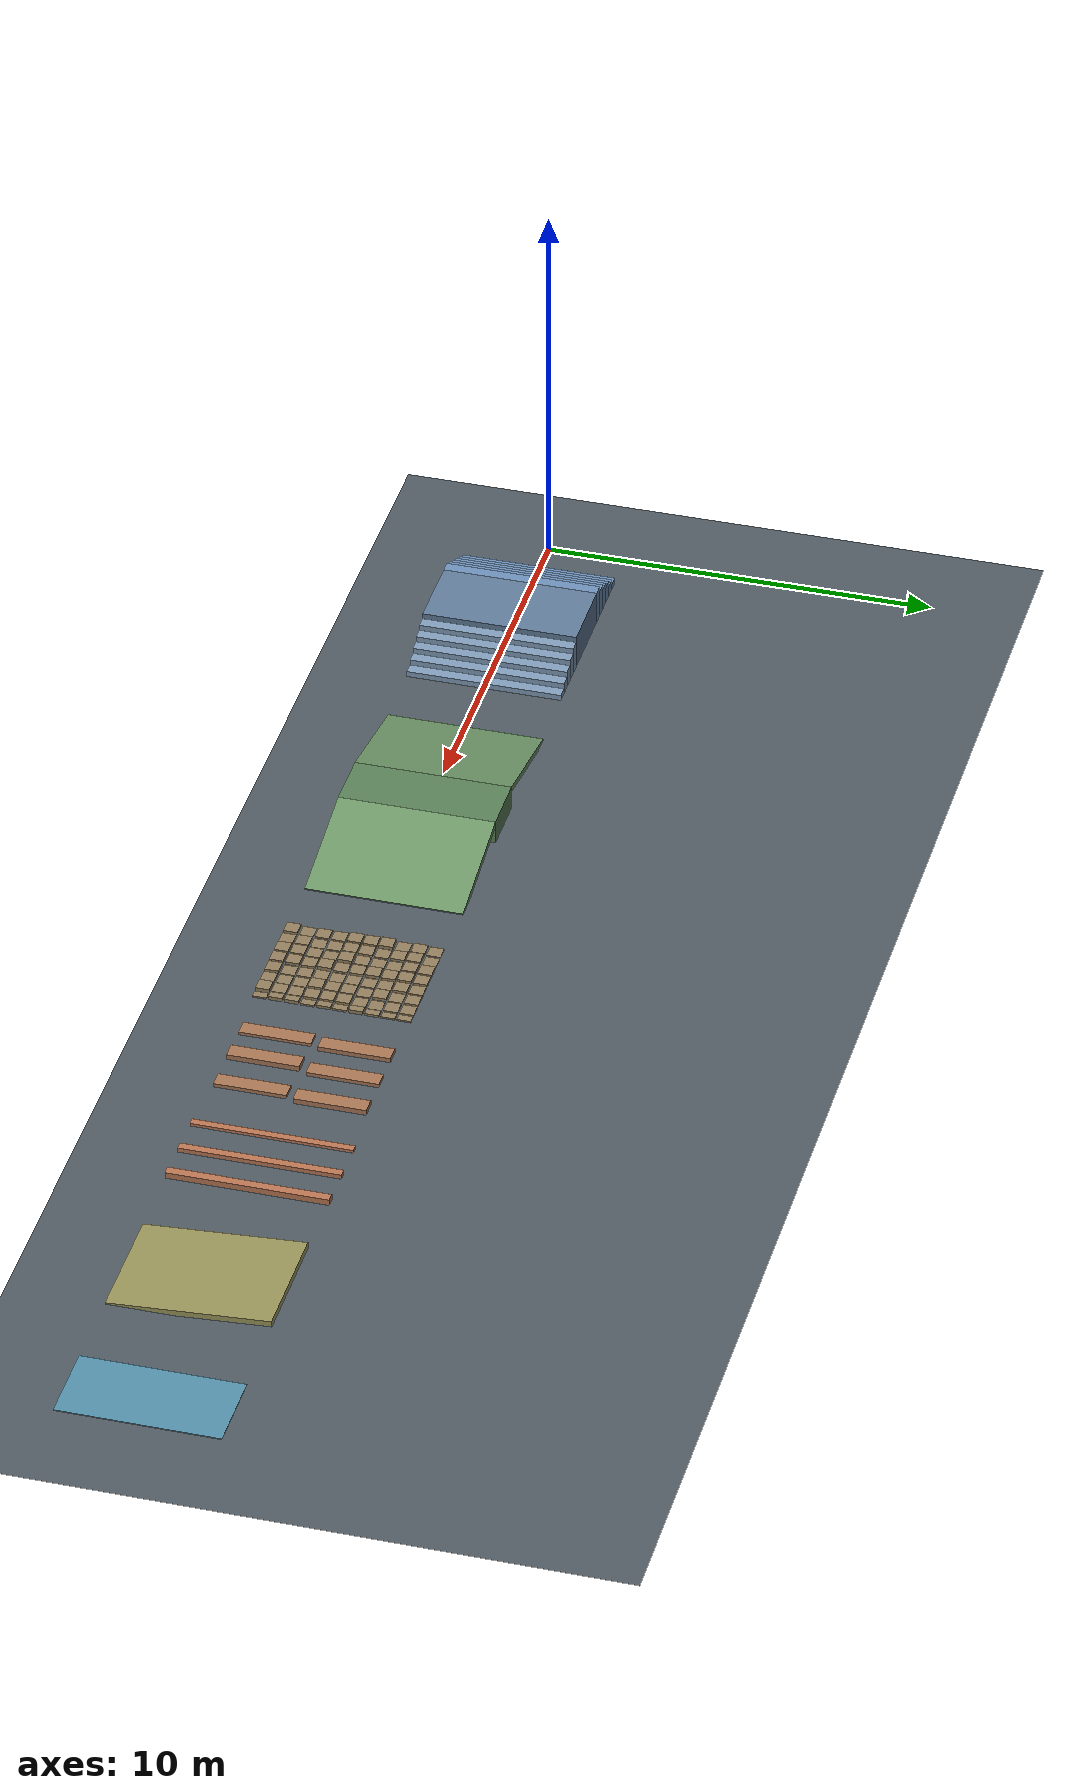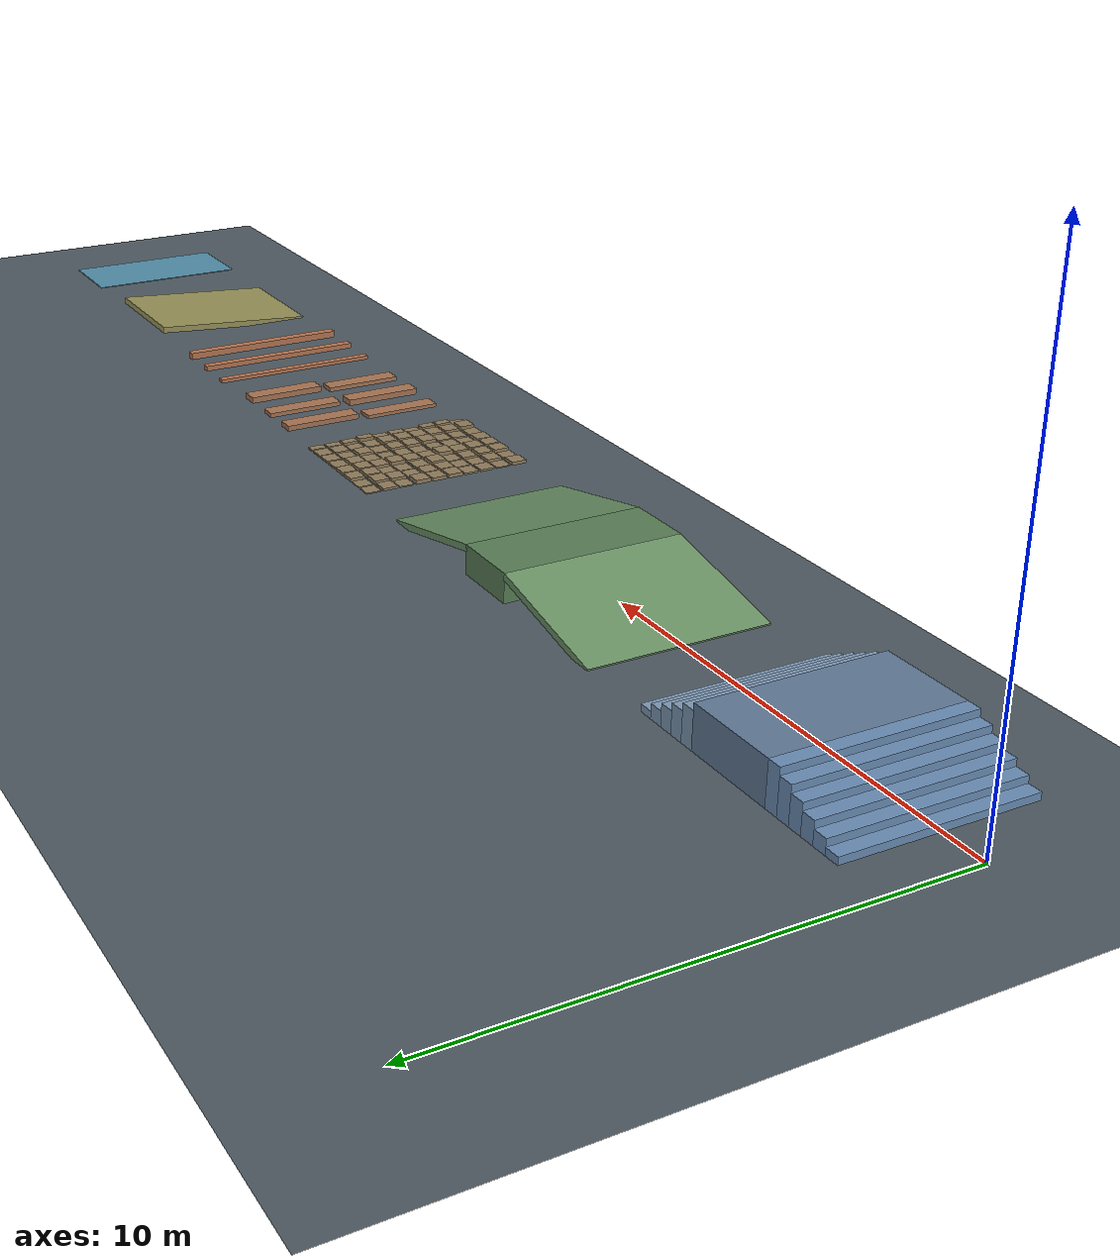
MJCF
<?xml version="1.0" encoding="utf-8"?>
<mujoco model="m20_all_terrain">
  <compiler angle="radian"/>
  <custom>
    <text name="terrain_kind" data="custom"/>
    <!-- width 用于统计范围；修改它不会自动改变各碰撞体的宽度。 -->
    <numeric name="width" data="4.0"/>
    <!-- friction 供加载器补地面时使用；已有地面的实际摩擦由下面 default 定义。 -->
    <numeric name="friction" data="1.0 0.01 0.01"/>
    <numeric name="spawn_xy" data="-1.0 0.0"/>
    <numeric name="spawn_yaw_deg" data="0"/>
    <!-- 修改路线总长度时同步统计终点；终点后保留 1m 以上空间。 -->
    <numeric name="goal_x" data="38.0"/>
  </custom>
  <default>
    <!-- 地面/障碍公共接触参数：滑动、扭转、滚动摩擦；局部可覆盖。 -->
    <default class="all_terrain_surface">
      <geom type="box" group="0" contype="1" conaffinity="1" condim="3"
            friction="1.0 0.01 0.01" rgba="0.52 0.57 0.63 1"/>
    </default>
  </default>
  <worldbody>
    <geom name="base_floor" class="all_terrain_surface" type="plane"
          pos="0 0 0" size="100 100 0.1" rgba="0.31 0.35 0.38 1"/>
    <!-- 01 上楼：6阶，阶高0.15，踏深0.30，宽4；每阶从地面实心填充。 -->
    <geom name="ascent_step_01" class="all_terrain_surface" pos="1.15 0 0.075" size="0.15 2 0.075" rgba="0.42 0.56 0.72 1"/>
    <geom name="ascent_step_02" class="all_terrain_surface" pos="1.45 0 0.15" size="0.15 2 0.15" rgba="0.42 0.56 0.72 1"/>
    <geom name="ascent_step_03" class="all_terrain_surface" pos="1.75 0 0.225" size="0.15 2 0.225" rgba="0.42 0.56 0.72 1"/>
    <geom name="ascent_step_04" class="all_terrain_surface" pos="2.05 0 0.3" size="0.15 2 0.3" rgba="0.42 0.56 0.72 1"/>
    <geom name="ascent_step_05" class="all_terrain_surface" pos="2.35 0 0.375" size="0.15 2 0.375" rgba="0.42 0.56 0.72 1"/>
    <geom name="ascent_step_06" class="all_terrain_surface" pos="2.65 0 0.45" size="0.15 2 0.45" rgba="0.42 0.56 0.72 1"/>
    <!-- 02 楼顶平台：X=[2.8,4.8]，长2，顶高0.9，宽4。 -->
    <geom name="stair_top_platform" class="all_terrain_surface" pos="3.8 0 0.45" size="1 2 0.45" rgba="0.38 0.48 0.60 1"/>
    <!-- 03 下楼：6次下降，各0.15，踏深0.30；第6级回到底部平面，无重复零厚盒。 -->
    <geom name="descent_step_01" class="all_terrain_surface" pos="4.95 0 0.375" size="0.15 2 0.375" rgba="0.50 0.61 0.72 1"/>
    <geom name="descent_step_02" class="all_terrain_surface" pos="5.25 0 0.3" size="0.15 2 0.3" rgba="0.50 0.61 0.72 1"/>
    <geom name="descent_step_03" class="all_terrain_surface" pos="5.55 0 0.225" size="0.15 2 0.225" rgba="0.50 0.61 0.72 1"/>
    <geom name="descent_step_04" class="all_terrain_surface" pos="5.85 0 0.15" size="0.15 2 0.15" rgba="0.50 0.61 0.72 1"/>
    <geom name="descent_step_05" class="all_terrain_surface" pos="6.15 0 0.075" size="0.15 2 0.075" rgba="0.50 0.61 0.72 1"/>
    <geom name="ramp_ascent" class="all_terrain_surface" pos="9.515593377 0 0.245473772" size="1.533510892 2 0.075" quat="0.994521895 0 -0.104528463 0" rgba="0.42 0.58 0.40 1"/>
    <geom name="ramp_top_platform" class="all_terrain_surface" pos="11.75 0 0.318834843" size="0.75 2 0.318834843" rgba="0.35 0.50 0.34 1"/>
    <geom name="ramp_descent" class="all_terrain_surface" pos="13.984406623 0 0.245473772" size="1.533510892 2 0.075" quat="0.994521895 0 0.104528463 0" rgba="0.42 0.58 0.40 1"/>
    <!-- 05 粗糙路面：X=[17,20]，宽4；0.35边长块，间隙0.05，顶高0.02~0.10。
         固定几何由种子42离线生成，重启不变；更换几何直接编辑各块。末行/列按范围裁切。
         方块之间是地面，块不移动；不是可变形碎石或随机实时地形。 -->
    <geom name="rough_00_00" class="all_terrain_surface" pos="17.175 -1.825 0.0356" size="0.175 0.175 0.0356" rgba="0.57 0.49 0.36 1"/>
    <geom name="rough_00_01" class="all_terrain_surface" pos="17.175 -1.425 0.011" size="0.175 0.175 0.011" rgba="0.57 0.49 0.36 1"/>
    <geom name="rough_00_02" class="all_terrain_surface" pos="17.175 -1.025 0.021" size="0.175 0.175 0.021" rgba="0.57 0.49 0.36 1"/>
    <geom name="rough_00_03" class="all_terrain_surface" pos="17.175 -0.625 0.01895" size="0.175 0.175 0.01895" rgba="0.57 0.49 0.36 1"/>
    <geom name="rough_00_04" class="all_terrain_surface" pos="17.175 -0.225 0.03945" size="0.175 0.175 0.03945" rgba="0.57 0.49 0.36 1"/>
    <geom name="rough_00_05" class="all_terrain_surface" pos="17.175 0.175 0.03705" size="0.175 0.175 0.03705" rgba="0.57 0.49 0.36 1"/>
    <geom name="rough_00_06" class="all_terrain_surface" pos="17.175 0.575 0.0457" size="0.175 0.175 0.0457" rgba="0.57 0.49 0.36 1"/>
    <geom name="rough_00_07" class="all_terrain_surface" pos="17.175 0.975 0.0135" size="0.175 0.175 0.0135" rgba="0.57 0.49 0.36 1"/>
    <geom name="rough_00_08" class="all_terrain_surface" pos="17.175 1.375 0.0269" size="0.175 0.175 0.0269" rgba="0.57 0.49 0.36 1"/>
    <geom name="rough_00_09" class="all_terrain_surface" pos="17.175 1.775 0.0112" size="0.175 0.175 0.0112" rgba="0.57 0.49 0.36 1"/>
    <geom name="rough_01_00" class="all_terrain_surface" pos="17.575 -1.825 0.01875" size="0.175 0.175 0.01875" rgba="0.57 0.49 0.36 1"/>
    <geom name="rough_01_01" class="all_terrain_surface" pos="17.575 -1.425 0.0302" size="0.175 0.175 0.0302" rgba="0.57 0.49 0.36 1"/>
    <geom name="rough_01_02" class="all_terrain_surface" pos="17.575 -1.025 0.01105" size="0.175 0.175 0.01105" rgba="0.57 0.49 0.36 1"/>
    <geom name="rough_01_03" class="all_terrain_surface" pos="17.575 -0.625 0.01795" size="0.175 0.175 0.01795" rgba="0.57 0.49 0.36 1"/>
    <geom name="rough_01_04" class="all_terrain_surface" pos="17.575 -0.225 0.036" size="0.175 0.175 0.036" rgba="0.57 0.49 0.36 1"/>
    <geom name="rough_01_05" class="all_terrain_surface" pos="17.575 0.175 0.0318" size="0.175 0.175 0.0318" rgba="0.57 0.49 0.36 1"/>
    <geom name="rough_01_06" class="all_terrain_surface" pos="17.575 0.575 0.0188" size="0.175 0.175 0.0188" rgba="0.57 0.49 0.36 1"/>
    <geom name="rough_01_07" class="all_terrain_surface" pos="17.575 0.975 0.03355" size="0.175 0.175 0.03355" rgba="0.57 0.49 0.36 1"/>
    <geom name="rough_01_08" class="all_terrain_surface" pos="17.575 1.375 0.0424" size="0.175 0.175 0.0424" rgba="0.57 0.49 0.36 1"/>
    <geom name="rough_01_09" class="all_terrain_surface" pos="17.575 1.775 0.01025" size="0.175 0.175 0.01025" rgba="0.57 0.49 0.36 1"/>
    <geom name="rough_02_00" class="all_terrain_surface" pos="17.975 -1.825 0.04225" size="0.175 0.175 0.04225" rgba="0.57 0.49 0.36 1"/>
    <geom name="rough_02_01" class="all_terrain_surface" pos="17.975 -1.425 0.03795" size="0.175 0.175 0.03795" rgba="0.57 0.49 0.36 1"/>
    <geom name="rough_02_02" class="all_terrain_surface" pos="17.975 -1.025 0.0236" size="0.175 0.175 0.0236" rgba="0.57 0.49 0.36 1"/>
    <geom name="rough_02_03" class="all_terrain_surface" pos="17.975 -0.625 0.0162" size="0.175 0.175 0.0162" rgba="0.57 0.49 0.36 1"/>
    <geom name="rough_02_04" class="all_terrain_surface" pos="17.975 -0.225 0.0483" size="0.175 0.175 0.0483" rgba="0.57 0.49 0.36 1"/>
    <geom name="rough_02_05" class="all_terrain_surface" pos="17.975 0.175 0.02345" size="0.175 0.175 0.02345" rgba="0.57 0.49 0.36 1"/>
    <geom name="rough_02_06" class="all_terrain_surface" pos="17.975 0.575 0.0137" size="0.175 0.175 0.0137" rgba="0.57 0.49 0.36 1"/>
    <geom name="rough_02_07" class="all_terrain_surface" pos="17.975 0.975 0.01385" size="0.175 0.175 0.01385" rgba="0.57 0.49 0.36 1"/>
    <geom name="rough_02_08" class="all_terrain_surface" pos="17.975 1.375 0.0439" size="0.175 0.175 0.0439" rgba="0.57 0.49 0.36 1"/>
    <geom name="rough_02_09" class="all_terrain_surface" pos="17.975 1.775 0.03415" size="0.175 0.175 0.03415" rgba="0.57 0.49 0.36 1"/>
    <geom name="rough_03_00" class="all_terrain_surface" pos="18.375 -1.825 0.0423" size="0.175 0.175 0.0423" rgba="0.57 0.49 0.36 1"/>
    <geom name="rough_03_01" class="all_terrain_surface" pos="18.375 -1.425 0.0392" size="0.175 0.175 0.0392" rgba="0.57 0.49 0.36 1"/>
    <geom name="rough_03_02" class="all_terrain_surface" pos="18.375 -1.025 0.03145" size="0.175 0.175 0.03145" rgba="0.57 0.49 0.36 1"/>
    <geom name="rough_03_03" class="all_terrain_surface" pos="18.375 -0.625 0.0489" size="0.175 0.175 0.0489" rgba="0.57 0.49 0.36 1"/>
    <geom name="rough_03_04" class="all_terrain_surface" pos="18.375 -0.225 0.02515" size="0.175 0.175 0.02515" rgba="0.57 0.49 0.36 1"/>
    <geom name="rough_03_05" class="all_terrain_surface" pos="18.375 0.175 0.0321" size="0.175 0.175 0.0321" rgba="0.57 0.49 0.36 1"/>
    <geom name="rough_03_06" class="all_terrain_surface" pos="18.375 0.575 0.0432" size="0.175 0.175 0.0432" rgba="0.57 0.49 0.36 1"/>
    <geom name="rough_03_07" class="all_terrain_surface" pos="18.375 0.975 0.03475" size="0.175 0.175 0.03475" rgba="0.57 0.49 0.36 1"/>
    <geom name="rough_03_08" class="all_terrain_surface" pos="18.375 1.375 0.04445" size="0.175 0.175 0.04445" rgba="0.57 0.49 0.36 1"/>
    <geom name="rough_03_09" class="all_terrain_surface" pos="18.375 1.775 0.0331" size="0.175 0.175 0.0331" rgba="0.57 0.49 0.36 1"/>
    <geom name="rough_04_00" class="all_terrain_surface" pos="18.775 -1.825 0.0382" size="0.175 0.175 0.0382" rgba="0.57 0.49 0.36 1"/>
    <geom name="rough_04_01" class="all_terrain_surface" pos="18.775 -1.425 0.01185" size="0.175 0.175 0.01185" rgba="0.57 0.49 0.36 1"/>
    <geom name="rough_04_02" class="all_terrain_surface" pos="18.775 -1.025 0.0191" size="0.175 0.175 0.0191" rgba="0.57 0.49 0.36 1"/>
    <geom name="rough_04_03" class="all_terrain_surface" pos="18.775 -0.625 0.0216" size="0.175 0.175 0.0216" rgba="0.57 0.49 0.36 1"/>
    <geom name="rough_04_04" class="all_terrain_surface" pos="18.775 -0.225 0.0132" size="0.175 0.175 0.0132" rgba="0.57 0.49 0.36 1"/>
    <geom name="rough_04_05" class="all_terrain_surface" pos="18.775 0.175 0.0193" size="0.175 0.175 0.0193" rgba="0.57 0.49 0.36 1"/>
    <geom name="rough_04_06" class="all_terrain_surface" pos="18.775 0.575 0.01405" size="0.175 0.175 0.01405" rgba="0.57 0.49 0.36 1"/>
    <geom name="rough_04_07" class="all_terrain_surface" pos="18.775 0.975 0.0211" size="0.175 0.175 0.0211" rgba="0.57 0.49 0.36 1"/>
    <geom name="rough_04_08" class="all_terrain_surface" pos="18.775 1.375 0.03545" size="0.175 0.175 0.03545" rgba="0.57 0.49 0.36 1"/>
    <geom name="rough_04_09" class="all_terrain_surface" pos="18.775 1.775 0.0246" size="0.175 0.175 0.0246" rgba="0.57 0.49 0.36 1"/>
    <geom name="rough_05_00" class="all_terrain_surface" pos="19.175 -1.825 0.0248" size="0.175 0.175 0.0248" rgba="0.57 0.49 0.36 1"/>
    <geom name="rough_05_01" class="all_terrain_surface" pos="19.175 -1.425 0.0184" size="0.175 0.175 0.0184" rgba="0.57 0.49 0.36 1"/>
    <geom name="rough_05_02" class="all_terrain_surface" pos="19.175 -1.025 0.0207" size="0.175 0.175 0.0207" rgba="0.57 0.49 0.36 1"/>
    <geom name="rough_05_03" class="all_terrain_surface" pos="19.175 -0.625 0.04745" size="0.175 0.175 0.04745" rgba="0.57 0.49 0.36 1"/>
    <geom name="rough_05_04" class="all_terrain_surface" pos="19.175 -0.225 0.0359" size="0.175 0.175 0.0359" rgba="0.57 0.49 0.36 1"/>
    <geom name="rough_05_05" class="all_terrain_surface" pos="19.175 0.175 0.03435" size="0.175 0.175 0.03435" rgba="0.57 0.49 0.36 1"/>
    <geom name="rough_05_06" class="all_terrain_surface" pos="19.175 0.575 0.01685" size="0.175 0.175 0.01685" rgba="0.57 0.49 0.36 1"/>
    <geom name="rough_05_07" class="all_terrain_surface" pos="19.175 0.975 0.03915" size="0.175 0.175 0.03915" rgba="0.57 0.49 0.36 1"/>
    <geom name="rough_05_08" class="all_terrain_surface" pos="19.175 1.375 0.01655" size="0.175 0.175 0.01655" rgba="0.57 0.49 0.36 1"/>
    <geom name="rough_05_09" class="all_terrain_surface" pos="19.175 1.775 0.0252" size="0.175 0.175 0.0252" rgba="0.57 0.49 0.36 1"/>
    <geom name="rough_06_00" class="all_terrain_surface" pos="19.575 -1.825 0.0496" size="0.175 0.175 0.0496" rgba="0.57 0.49 0.36 1"/>
    <geom name="rough_06_01" class="all_terrain_surface" pos="19.575 -1.425 0.0356" size="0.175 0.175 0.0356" rgba="0.57 0.49 0.36 1"/>
    <geom name="rough_06_02" class="all_terrain_surface" pos="19.575 -1.025 0.0323" size="0.175 0.175 0.0323" rgba="0.57 0.49 0.36 1"/>
    <geom name="rough_06_03" class="all_terrain_surface" pos="19.575 -0.625 0.0374" size="0.175 0.175 0.0374" rgba="0.57 0.49 0.36 1"/>
    <geom name="rough_06_04" class="all_terrain_surface" pos="19.575 -0.225 0.0437" size="0.175 0.175 0.0437" rgba="0.57 0.49 0.36 1"/>
    <geom name="rough_06_05" class="all_terrain_surface" pos="19.575 0.175 0.04105" size="0.175 0.175 0.04105" rgba="0.57 0.49 0.36 1"/>
    <geom name="rough_06_06" class="all_terrain_surface" pos="19.575 0.575 0.01915" size="0.175 0.175 0.01915" rgba="0.57 0.49 0.36 1"/>
    <geom name="rough_06_07" class="all_terrain_surface" pos="19.575 0.975 0.0113" size="0.175 0.175 0.0113" rgba="0.57 0.49 0.36 1"/>
    <geom name="rough_06_08" class="all_terrain_surface" pos="19.575 1.375 0.0226" size="0.175 0.175 0.0226" rgba="0.57 0.49 0.36 1"/>
    <geom name="rough_06_09" class="all_terrain_surface" pos="19.575 1.775 0.0207" size="0.175 0.175 0.0207" rgba="0.57 0.49 0.36 1"/>
    <geom name="rough_07_00" class="all_terrain_surface" pos="19.9 -1.825 0.01845" size="0.1 0.175 0.01845" rgba="0.57 0.49 0.36 1"/>
    <geom name="rough_07_01" class="all_terrain_surface" pos="19.9 -1.425 0.0477" size="0.1 0.175 0.0477" rgba="0.57 0.49 0.36 1"/>
    <geom name="rough_07_02" class="all_terrain_surface" pos="19.9 -1.025 0.04505" size="0.1 0.175 0.04505" rgba="0.57 0.49 0.36 1"/>
    <geom name="rough_07_03" class="all_terrain_surface" pos="19.9 -0.625 0.0226" size="0.1 0.175 0.0226" rgba="0.57 0.49 0.36 1"/>
    <geom name="rough_07_04" class="all_terrain_surface" pos="19.9 -0.225 0.0362" size="0.1 0.175 0.0362" rgba="0.57 0.49 0.36 1"/>
    <geom name="rough_07_05" class="all_terrain_surface" pos="19.9 0.175 0.02585" size="0.1 0.175 0.02585" rgba="0.57 0.49 0.36 1"/>
    <geom name="rough_07_06" class="all_terrain_surface" pos="19.9 0.575 0.0466" size="0.1 0.175 0.0466" rgba="0.57 0.49 0.36 1"/>
    <geom name="rough_07_07" class="all_terrain_surface" pos="19.9 0.975 0.02835" size="0.1 0.175 0.02835" rgba="0.57 0.49 0.36 1"/>
    <geom name="rough_07_08" class="all_terrain_surface" pos="19.9 1.375 0.0206" size="0.1 0.175 0.0206" rgba="0.57 0.49 0.36 1"/>
    <geom name="rough_07_09" class="all_terrain_surface" pos="19.9 1.775 0.01985" size="0.1 0.175 0.01985" rgba="0.57 0.49 0.36 1"/>
    <!-- 06 错位方块：X=[21,24]，顶高0.08~0.14；每列左右高度/位置不同，测试不对称跨越和侧移。
         后续两列与首列留0.6~0.7的间隔；可沿中心穿越，也可主动侧移选路。 -->
    <geom name="offset_obstacle_1_1" class="all_terrain_surface" pos="21.3 -1 0.04" size="0.2 0.9 0.04" rgba="0.66 0.46 0.33 1"/>
    <geom name="offset_obstacle_1_2" class="all_terrain_surface" pos="21.42 1 0.06" size="0.2 0.9 0.06" rgba="0.66 0.46 0.33 1"/>
    <geom name="offset_obstacle_2_1" class="all_terrain_surface" pos="22.3 -1 0.07" size="0.2 0.9 0.07" rgba="0.66 0.46 0.33 1"/>
    <geom name="offset_obstacle_2_2" class="all_terrain_surface" pos="22.42 1 0.05" size="0.2 0.9 0.05" rgba="0.66 0.46 0.33 1"/>
    <geom name="offset_obstacle_3_1" class="all_terrain_surface" pos="23.4 -1 0.05" size="0.2 0.9 0.05" rgba="0.66 0.46 0.33 1"/>
    <geom name="offset_obstacle_3_2" class="all_terrain_surface" pos="23.52 1 0.07" size="0.2 0.9 0.07" rgba="0.66 0.46 0.33 1"/>
    <!-- 07 连续横向障碍条：X起点25/26/27，顶高0.08/0.12/0.16，深0.18/0.20/0.22，宽4。
         单条为长方体实心障碍，包含上台和下台；修改深度需要同时改X中心和半长度。 -->
    <geom name="hurdle_01" class="all_terrain_surface" pos="25.09 0 0.04" size="0.09 2 0.04" rgba="0.72 0.46 0.32 1"/>
    <geom name="hurdle_02" class="all_terrain_surface" pos="26.1 0 0.06" size="0.1 2 0.06" rgba="0.72 0.46 0.32 1"/>
    <geom name="hurdle_03" class="all_terrain_surface" pos="27.11 0 0.08" size="0.11 2 0.08" rgba="0.72 0.46 0.32 1"/>
    <geom name="cross_slope" class="all_terrain_surface" pos="30.5 0.005231736 0.06503632" size="1.5 2.004883796 0.075" quat="0.999390827 0.034899497 0 0" rgba="0.60 0.58 0.35 1"/>
    <geom name="low_friction_patch" class="all_terrain_surface" priority="1" pos="35 0 0.01" size="1 2 0.01" friction="0.5 0.01 0.01" rgba="0.32 0.56 0.66 1"/>
    <!-- 10 终点：X=38，X=[36,39]为平地；可在缓冲段停车后用Q/E转向，反向走回测试。 -->
  </worldbody>
</mujoco>
